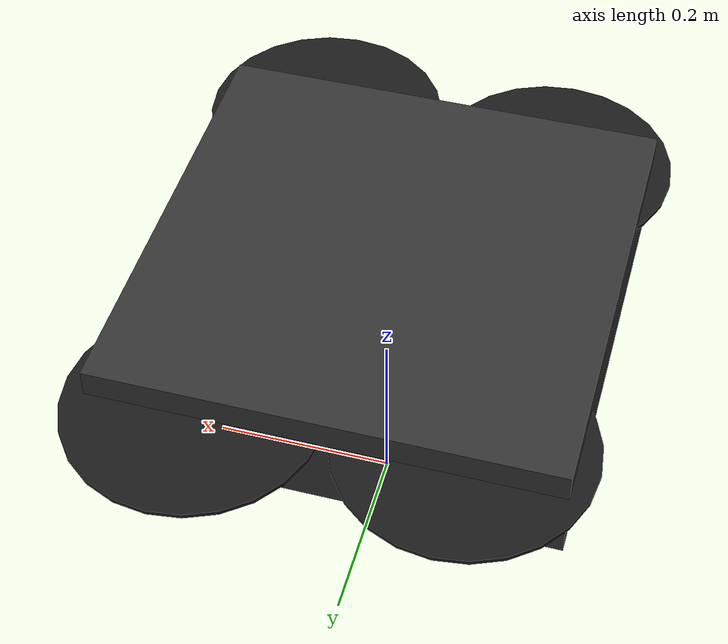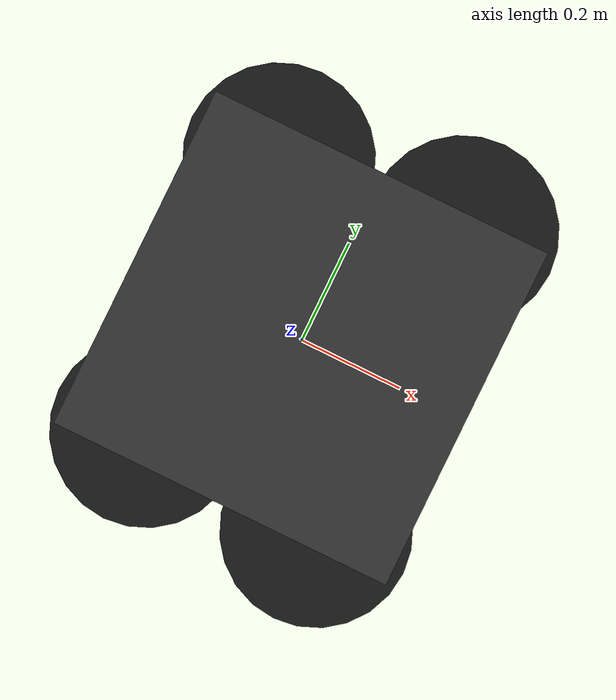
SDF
<?xml version="1.0"?>
<sdf version="1.9">
  <model name="x500">
    <pose>0 0 0.3 0 0 0</pose>

    <link name="base_link">
      <inertial>
        <mass>1.5</mass>
        <inertia>
          <ixx>0.029125</ixx>
          <iyy>0.029125</iyy>
          <izz>0.055225</izz>
        </inertia>
      </inertial>

      <visual name="base_visual">
        <geometry>
          <box>
            <size>0.47 0.47 0.11</size>
          </box>
        </geometry>
        <material>
          <ambient>0.2 0.2 0.2 1</ambient>
          <diffuse>0.2 0.2 0.2 1</diffuse>
          <specular>0.1 0.1 0.1 1</specular>
        </material>
      </visual>

      <collision name="base_collision">
        <geometry>
          <box>
            <size>0.47 0.47 0.11</size>
          </box>
        </geometry>
      </collision>
    </link>

    <!-- Rotor 0 -->
    <link name="rotor_0">
      <pose>0.13 -0.22 0.023 0 0 0</pose>
      <inertial>
        <mass>0.005</mass>
        <inertia>
          <ixx>9.75e-07</ixx>
          <iyy>0.0001667</iyy>
          <izz>0.0001676</izz>
        </inertia>
      </inertial>
      <visual name="visual">
        <geometry>
          <cylinder>
            <radius>0.128</radius>
            <length>0.005</length>
          </cylinder>
        </geometry>
        <material>
          <ambient>0.1 0.1 0.1 1</ambient>
          <diffuse>0.1 0.1 0.1 1</diffuse>
        </material>
      </visual>
      <collision name="collision">
        <geometry>
          <cylinder>
            <radius>0.128</radius>
            <length>0.005</length>
          </cylinder>
        </geometry>
      </collision>
    </link>

    <joint name="rotor_0_joint" type="revolute">
      <parent>base_link</parent>
      <child>rotor_0</child>
      <axis>
        <xyz>0 0 1</xyz>
        <limit>
          <lower>-1e16</lower>
          <upper>1e16</upper>
        </limit>
      </axis>
    </joint>

    <!-- Rotor 1 -->
    <link name="rotor_1">
      <pose>-0.13 0.2 0.023 0 0 0</pose>
      <inertial>
        <mass>0.005</mass>
        <inertia>
          <ixx>9.75e-07</ixx>
          <iyy>0.0001667</iyy>
          <izz>0.0001676</izz>
        </inertia>
      </inertial>
      <visual name="visual">
        <geometry>
          <cylinder>
            <radius>0.128</radius>
            <length>0.005</length>
          </cylinder>
        </geometry>
        <material>
          <ambient>0.1 0.1 0.1 1</ambient>
          <diffuse>0.1 0.1 0.1 1</diffuse>
        </material>
      </visual>
      <collision name="collision">
        <geometry>
          <cylinder>
            <radius>0.128</radius>
            <length>0.005</length>
          </cylinder>
        </geometry>
      </collision>
    </link>

    <joint name="rotor_1_joint" type="revolute">
      <parent>base_link</parent>
      <child>rotor_1</child>
      <axis>
        <xyz>0 0 1</xyz>
        <limit>
          <lower>-1e16</lower>
          <upper>1e16</upper>
        </limit>
      </axis>
    </joint>

    <!-- Rotor 2 -->
    <link name="rotor_2">
      <pose>0.13 0.22 0.023 0 0 0</pose>
      <inertial>
        <mass>0.005</mass>
        <inertia>
          <ixx>9.75e-07</ixx>
          <iyy>0.0001667</iyy>
          <izz>0.0001676</izz>
        </inertia>
      </inertial>
      <visual name="visual">
        <geometry>
          <cylinder>
            <radius>0.128</radius>
            <length>0.005</length>
          </cylinder>
        </geometry>
        <material>
          <ambient>0.1 0.1 0.1 1</ambient>
          <diffuse>0.1 0.1 0.1 1</diffuse>
        </material>
      </visual>
      <collision name="collision">
        <geometry>
          <cylinder>
            <radius>0.128</radius>
            <length>0.005</length>
          </cylinder>
        </geometry>
      </collision>
    </link>

    <joint name="rotor_2_joint" type="revolute">
      <parent>base_link</parent>
      <child>rotor_2</child>
      <axis>
        <xyz>0 0 1</xyz>
        <limit>
          <lower>-1e16</lower>
          <upper>1e16</upper>
        </limit>
      </axis>
    </joint>

    <!-- Rotor 3 -->
    <link name="rotor_3">
      <pose>-0.13 -0.2 0.023 0 0 0</pose>
      <inertial>
        <mass>0.005</mass>
        <inertia>
          <ixx>9.75e-07</ixx>
          <iyy>0.0001667</iyy>
          <izz>0.0001676</izz>
        </inertia>
      </inertial>
      <visual name="visual">
        <geometry>
          <cylinder>
            <radius>0.128</radius>
            <length>0.005</length>
          </cylinder>
        </geometry>
        <material>
          <ambient>0.1 0.1 0.1 1</ambient>
          <diffuse>0.1 0.1 0.1 1</diffuse>
        </material>
      </visual>
      <collision name="collision">
        <geometry>
          <cylinder>
            <radius>0.128</radius>
            <length>0.005</length>
          </cylinder>
        </geometry>
      </collision>
    </link>

    <joint name="rotor_3_joint" type="revolute">
      <parent>base_link</parent>
      <child>rotor_3</child>
      <axis>
        <xyz>0 0 1</xyz>
        <limit>
          <lower>-1e16</lower>
          <upper>1e16</upper>
        </limit>
      </axis>
    </joint>

    <!-- Motor Model Plugins -->
    <plugin filename="gz-sim-multicopter-motor-model-system"
            name="gz::sim::systems::MulticopterMotorModel">
      <jointName>rotor_0_joint</jointName>
      <linkName>rotor_0</linkName>
      <turningDirection>ccw</turningDirection>
      <timeConstantUp>0.0125</timeConstantUp>
      <timeConstantDown>0.025</timeConstantDown>
      <maxRotVelocity>1100</maxRotVelocity>
      <motorConstant>8.54858e-06</motorConstant>
      <momentConstant>0.06</momentConstant>
      <commandSubTopic>command/motor_speed</commandSubTopic>
      <motorNumber>0</motorNumber>
      <rotorDragCoefficient>0.000806428</rotorDragCoefficient>
      <rollingMomentCoefficient>1e-06</rollingMomentCoefficient>
      <motorSpeedPubTopic>motor_speed/0</motorSpeedPubTopic>
      <rotorVelocitySlowdownSim>10</rotorVelocitySlowdownSim>
      <motorType>velocity</motorType>
    </plugin>

    <plugin filename="gz-sim-multicopter-motor-model-system"
            name="gz::sim::systems::MulticopterMotorModel">
      <jointName>rotor_1_joint</jointName>
      <linkName>rotor_1</linkName>
      <turningDirection>cw</turningDirection>
      <timeConstantUp>0.0125</timeConstantUp>
      <timeConstantDown>0.025</timeConstantDown>
      <maxRotVelocity>1100</maxRotVelocity>
      <motorConstant>8.54858e-06</motorConstant>
      <momentConstant>0.06</momentConstant>
      <commandSubTopic>command/motor_speed</commandSubTopic>
      <motorNumber>1</motorNumber>
      <rotorDragCoefficient>0.000806428</rotorDragCoefficient>
      <rollingMomentCoefficient>1e-06</rollingMomentCoefficient>
      <motorSpeedPubTopic>motor_speed/1</motorSpeedPubTopic>
      <rotorVelocitySlowdownSim>10</rotorVelocitySlowdownSim>
      <motorType>velocity</motorType>
    </plugin>

    <plugin filename="gz-sim-multicopter-motor-model-system"
            name="gz::sim::systems::MulticopterMotorModel">
      <jointName>rotor_2_joint</jointName>
      <linkName>rotor_2</linkName>
      <turningDirection>ccw</turningDirection>
      <timeConstantUp>0.0125</timeConstantUp>
      <timeConstantDown>0.025</timeConstantDown>
      <maxRotVelocity>1100</maxRotVelocity>
      <motorConstant>8.54858e-06</motorConstant>
      <momentConstant>0.06</momentConstant>
      <commandSubTopic>command/motor_speed</commandSubTopic>
      <motorNumber>2</motorNumber>
      <rotorDragCoefficient>0.000806428</rotorDragCoefficient>
      <rollingMomentCoefficient>1e-06</rollingMomentCoefficient>
      <motorSpeedPubTopic>motor_speed/2</motorSpeedPubTopic>
      <rotorVelocitySlowdownSim>10</rotorVelocitySlowdownSim>
      <motorType>velocity</motorType>
    </plugin>

    <plugin filename="gz-sim-multicopter-motor-model-system"
            name="gz::sim::systems::MulticopterMotorModel">
      <jointName>rotor_3_joint</jointName>
      <linkName>rotor_3</linkName>
      <turningDirection>cw</turningDirection>
      <timeConstantUp>0.0125</timeConstantUp>
      <timeConstantDown>0.025</timeConstantDown>
      <maxRotVelocity>1100</maxRotVelocity>
      <motorConstant>8.54858e-06</motorConstant>
      <momentConstant>0.06</momentConstant>
      <commandSubTopic>command/motor_speed</commandSubTopic>
      <motorNumber>3</motorNumber>
      <rotorDragCoefficient>0.000806428</rotorDragCoefficient>
      <rollingMomentCoefficient>1e-06</rollingMomentCoefficient>
      <motorSpeedPubTopic>motor_speed/3</motorSpeedPubTopic>
      <rotorVelocitySlowdownSim>10</rotorVelocitySlowdownSim>
      <motorType>velocity</motorType>
    </plugin>

    <plugin filename="gz-sim-multicopter-control-system"
            name="gz::sim::systems::MulticopterVelocityControl">
      <robotNamespace></robotNamespace>
      <commandSubTopic>cmd_vel</commandSubTopic>
      <motorControlPubTopic>command/motor_speed</motorControlPubTopic>
      <enableSubTopic>enable</enableSubTopic>
      <comLinkName>base_link</comLinkName>
      <velocityGain>2.7 2.7 2.7</velocityGain>
      <attitudeGain>3.0 3.0 0.15</attitudeGain>
      <angularRateGain>0.52 0.52 0.025</angularRateGain>
      <maximumLinearVelocity>5 5 3</maximumLinearVelocity>
      <maximumLinearAcceleration>5 5 3</maximumLinearAcceleration>
      <maximumAngularVelocity>3 3 1</maximumAngularVelocity>
      <linearVelocityNoiseMean>0 0 0</linearVelocityNoiseMean>
      <linearVelocityNoiseStdDev>0.1 0.1 0.1</linearVelocityNoiseStdDev>
      <angularVelocityNoiseMean>0 0 0</angularVelocityNoiseMean>
      <angularVelocityNoiseStdDev>0.05 0.05 0.05</angularVelocityNoiseStdDev>

      <rotorConfiguration>
        <rotor>
          <jointName>rotor_0_joint</jointName>
          <forceConstant>8.54858e-06</forceConstant>
          <momentConstant>0.06</momentConstant>
          <direction>1</direction>
        </rotor>
        <rotor>
          <jointName>rotor_1_joint</jointName>
          <forceConstant>8.54858e-06</forceConstant>
          <momentConstant>0.06</momentConstant>
          <direction>-1</direction>
        </rotor>
        <rotor>
          <jointName>rotor_2_joint</jointName>
          <forceConstant>8.54858e-06</forceConstant>
          <momentConstant>0.06</momentConstant>
          <direction>1</direction>
        </rotor>
        <rotor>
          <jointName>rotor_3_joint</jointName>
          <forceConstant>8.54858e-06</forceConstant>
          <momentConstant>0.06</momentConstant>
          <direction>-1</direction>
        </rotor>
      </rotorConfiguration>
    </plugin>

    <!-- Odometry Publisher -->
    <plugin filename="gz-sim-odometry-publisher-system"
            name="gz::sim::systems::OdometryPublisher">
      <odom_frame>odom</odom_frame>
      <robot_base_frame>base_link</robot_base_frame>
      <odom_topic>odometry</odom_topic>
      <odom_publish_frequency>50</odom_publish_frequency>
    </plugin>

  </model>
</sdf>
